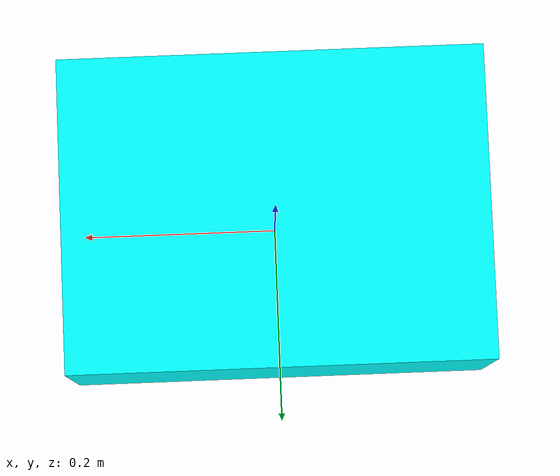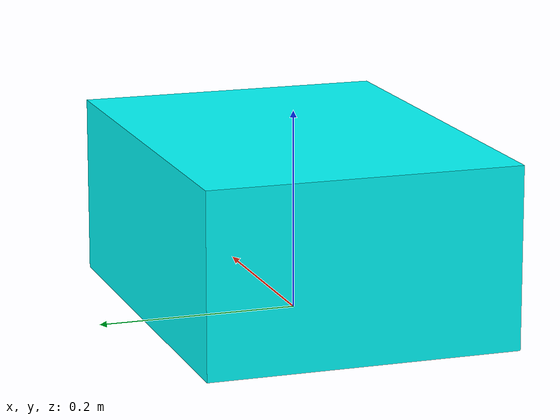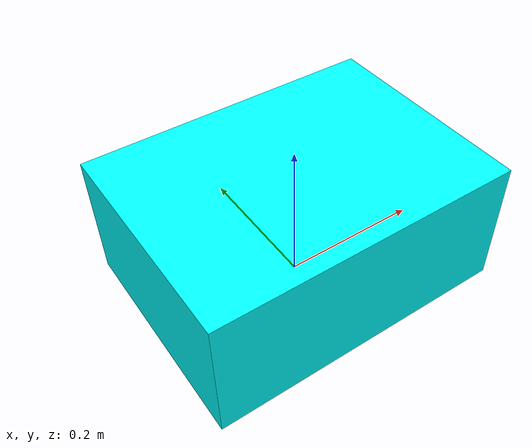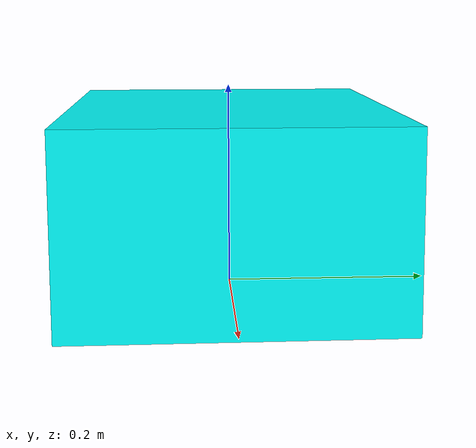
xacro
<?xml version="1.0"?>
<robot xmlns:xacro="https://ros.org/wiki/xacro" name="roboto">

    <xacro:property name="base_width" value = "0.31"/>
    <xacro:property name="base_length" value = "0.42"/>
    <xacro:property name="base_height" value = "0.18"/>

    <xacro:macro name="box_inertia" params="m w h d">
        <inertial>
        <origin xyz="0 0 0" rpy="${pi/2} 0 ${pi/2}"/>
        <mass value="${m}"/>
        <inertia ixx="${(m/12) * (h*h + d*d)}" ixy="0.0" ixz="0.0" iyy="${(m/12) * (w*w + d*d)}" iyz="0.0" izz="${(m/12) * (w*w + h*h)}"/>
        </inertial>
    </xacro:macro>

    <link name="base_link">
        <visual>
        <origin xyz="0 0 ${base_height/2}" rpy="0 0 0"/>
            <geometry>
                <box size="${base_length} ${base_width} ${base_height}"/>
            </geometry>
            <material name="Cyan">
                <color rgba="0 1.0 1.0 1.0"/>
            </material>
        </visual>
        <collision>
            <origin xyz="0 0 ${base_height/2}" rpy="0 0 0"/>
                <geometry>
                    <box size="${base_length} ${base_width} ${base_height}"/>
                </geometry>
        </collision>

    <xacro:box_inertia m="5" w="${base_width}" d="${base_length}" h="${base_height}"/>
  </link>
</robot>
